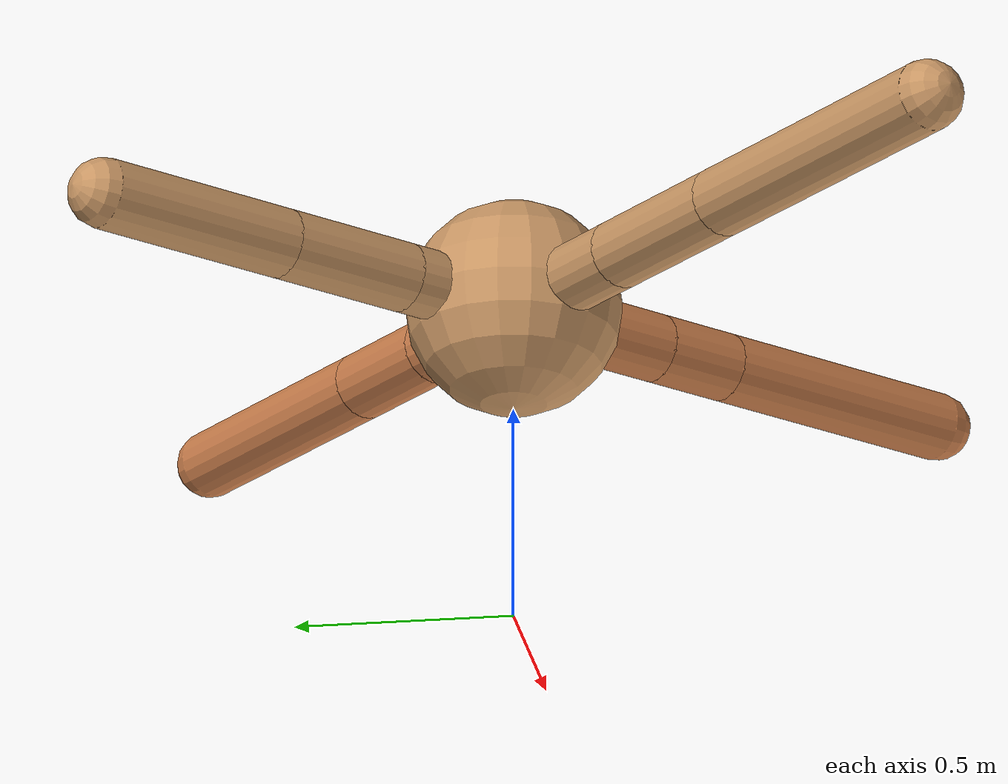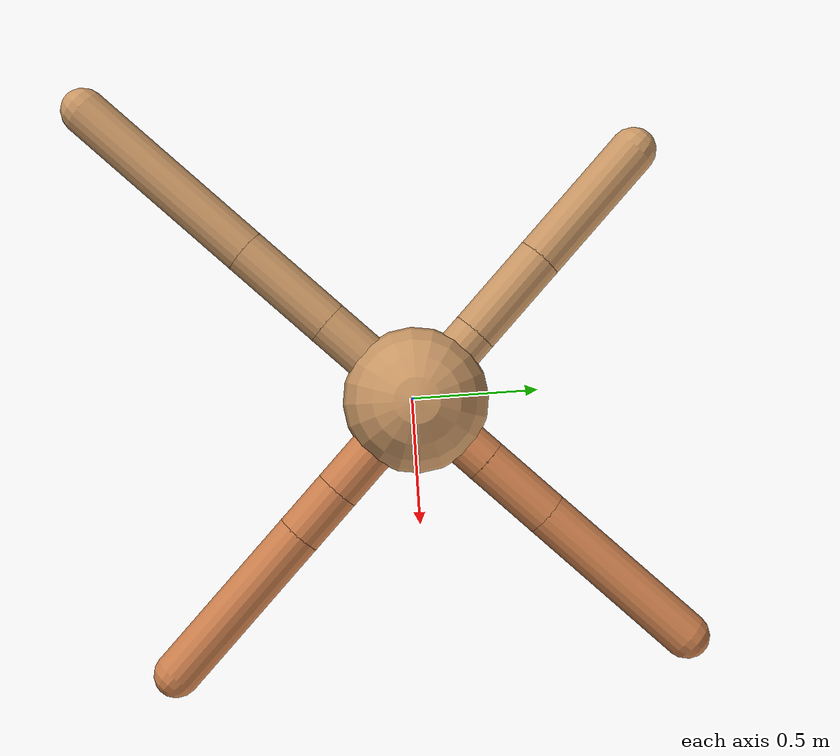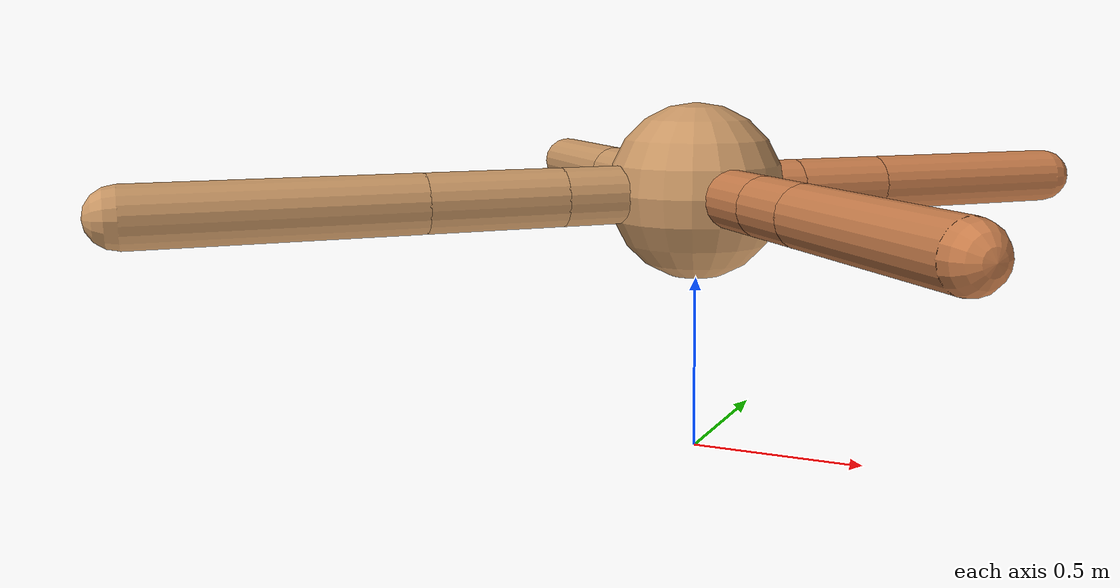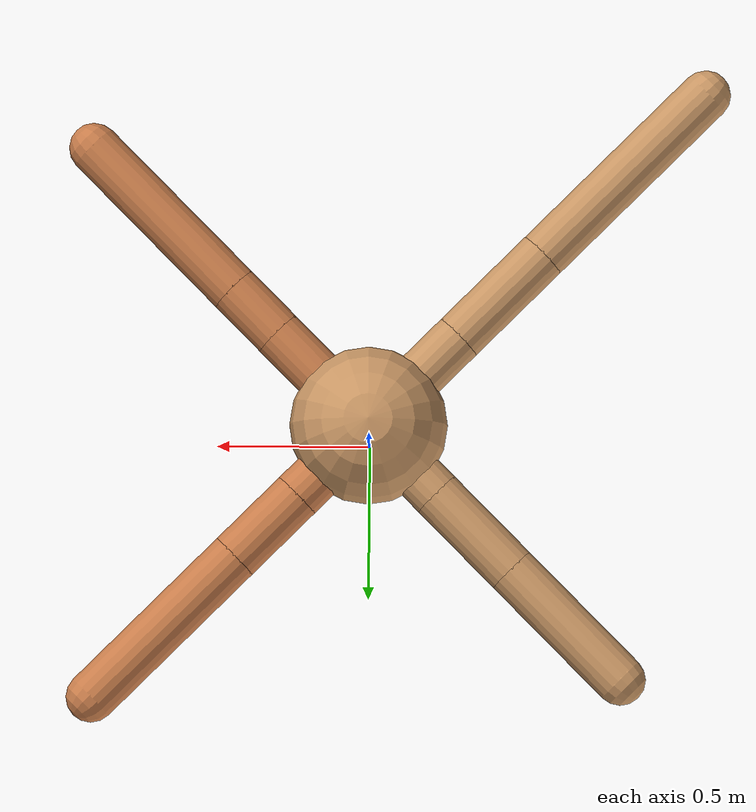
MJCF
<mujoco model="ant">
  <compiler angle="degree" coordinate="local" inertiafromgeom="true" />
  <option integrator="RK4" timestep="0.01" />
  <custom>
    <numeric data="0.0 0.0 0.55 1.0 0.0 0.0 0.0 0.0 1.0 0.0 -1.0 0.0 -1.0 0.0 1.0" name="init_qpos" />
  </custom>
  <default>
    <joint armature="1" damping="1" limited="true" />
    <geom conaffinity="0" condim="3" density="5.0" friction="1.5 0.1 0.1" margin="0.01" rgba="0.8 0.6 0.4 1" />
  </default>
  <worldbody>
    <body name="torso" pos="0 0 0.75">
      <geom name="torso_geom" pos="0 0 0" size="0.25" type="sphere" />

      <body name="front_left_leg" pos="0 0 0">
        <geom fromto="0.0 0.0 0.0 0.22406330046752385 0.22406330046752385 0.0" name="aux_1_geom" size="0.08" type="capsule" rgba=".8 .5 .3 1" />
        <body name="aux_1" pos="0.22406330046752385 0.22406330046752385 0.0">
          <joint axis="0 0 1" name="hip_1" pos="0.0 0.0 0.0" range="-40 40" type="hinge" />
          <geom fromto="0.0 0.0 0.0 0.19453511429384307 0.19453511429384307 0.0" name="left_leg_geom" size="0.08" type="capsule" rgba=".8 .5 .3 1" />
          <body pos="0.19453511429384307 0.19453511429384307 0.0" name="front_left_foot">
            <joint axis="-1 1 0" name="ankle_1" pos="0.0 0.0 0.0" range="30 100" type="hinge" />
            <geom fromto="0.0 0.0 0.0 0.44657317810074065 0.44657317810074065 0.0" name="left_ankle_geom" size="0.08" type="capsule" rgba=".8 .5 .3 1" />
          </body>
        </body>
      </body>
      <body name="front_right_leg" pos="0 0 0">
        <geom fromto="0.0 0.0 0.0 -0.21680452396601646 0.21680452396601646 0.0" name="aux_2_geom" size="0.08" type="capsule" />
        <body name="aux_2" pos="-0.21680452396601646 0.21680452396601646 0.0">
          <joint axis="0 0 1" name="hip_2" pos="0.0 0.0 0.0" range="-40 40" type="hinge" />
          <geom fromto="0.0 0.0 0.0 -0.23743875932394085 0.23743875932394085 0.0" name="right_leg_geom" size="0.08" type="capsule" />
          <body pos="-0.23743875932394085 0.23743875932394085 0.0" name="front_right_foot">
            <joint axis="1 1 0" name="ankle_2" pos="0.0 0.0 0.0" range="-100 -30" type="hinge" />
            <geom fromto="0.0 0.0 0.0 -0.3444537885298039 0.3444537885298039 0.0" name="right_ankle_geom" size="0.08" type="capsule" />
          </body>
        </body>
      </body>
      <body name="left_back_leg" pos="0 0 0">
        <geom fromto="0.0 0.0 0.0 -0.2821626042234943 -0.2821626042234943 0.0" name="aux_3_geom" size="0.08" type="capsule" />
        <body name="aux_3" pos="-0.2821626042234943 -0.2821626042234943 0.0">
          <joint axis="0 0 1" name="hip_3" pos="0.0 0.0 0.0" range="-40 40" type="hinge" />
          <geom fromto="0.0 0.0 0.0 -0.2637555523949366 -0.2637555523949366 0.0" name="back_leg_geom" size="0.08" type="capsule" />
          <body pos="-0.2637555523949366 -0.2637555523949366 0.0" name="left_back_foot">
            <joint axis="-1 1 0" name="ankle_3" pos="0.0 0.0 0.0" range="-100 -30" type="hinge" />
            <geom fromto="0.0 0.0 0.0 -0.5165655125593852 -0.5165655125593852 0.0" name="third_ankle_geom" size="0.08" type="capsule" />
          </body>
        </body>
      </body>
      <body name="right_back_leg" pos="0 0 0">
        <geom fromto="0.0 0.0 0.0 0.28874676626979767 -0.28874676626979767 0.0" name="aux_4_geom" size="0.08" type="capsule" rgba=".8 .5 .3 1" />
        <body name="aux_4" pos="0.28874676626979767 -0.28874676626979767 0.0">
          <joint axis="0 0 1" name="hip_4" pos="0.0 0.0 0.0" range="-40 40" type="hinge" />
          <geom fromto="0.0 0.0 0.0 0.14097942927292426 -0.14097942927292426 0.0" name="rightback_leg_geom" size="0.08" type="capsule" rgba=".8 .5 .3 1" />
          <body pos="0.14097942927292426 -0.14097942927292426 0.0" name="right_back_foot">
            <joint axis="1 1 0" name="ankle_4" pos="0.0 0.0 0.0" range="30 100" type="hinge" />
            <geom fromto="0.0 0.0 0.0 0.44841162545471225 -0.44841162545471225 0.0" name="fourth_ankle_geom" size="0.08" type="capsule" rgba=".8 .5 .3 1" />
          </body>
        </body>
      </body>
    </body>
  </worldbody>
  <actuator>
    <motor ctrllimited="true" ctrlrange="-1.0 1.0" joint="hip_4" gear="150" />
    <motor ctrllimited="true" ctrlrange="-1.0 1.0" joint="ankle_4" gear="150" />
    <motor ctrllimited="true" ctrlrange="-1.0 1.0" joint="hip_1" gear="150" />
    <motor ctrllimited="true" ctrlrange="-1.0 1.0" joint="ankle_1" gear="150" />
    <motor ctrllimited="true" ctrlrange="-1.0 1.0" joint="hip_2" gear="150" />
    <motor ctrllimited="true" ctrlrange="-1.0 1.0" joint="ankle_2" gear="150" />
    <motor ctrllimited="true" ctrlrange="-1.0 1.0" joint="hip_3" gear="150" />
    <motor ctrllimited="true" ctrlrange="-1.0 1.0" joint="ankle_3" gear="150" />
  </actuator>
</mujoco>
